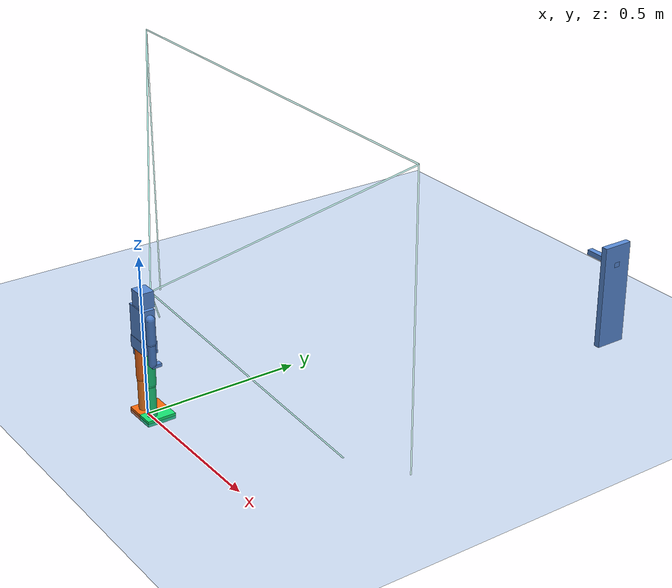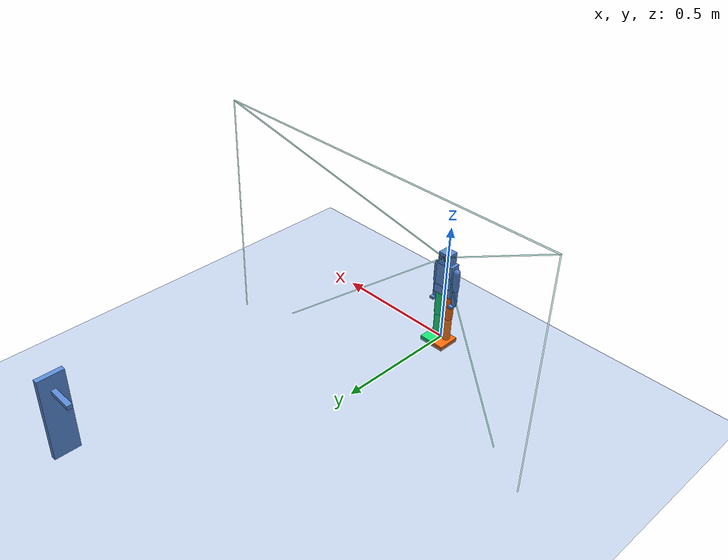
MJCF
<!-- Dronable v0 biped — AiNex-class ~0.41 m, walking core DOF + neck_pitch (pan-tilt)
     Units: meters, kilograms, radians. Z-up. -->
<mujoco model="dronable_v0">
  <compiler angle="radian" meshdir="." autolimits="true"/>
  <option timestep="0.002" gravity="0 0 -9.81" integrator="implicitfast"/>

  <visual>
    <global offwidth="960" offheight="720"/>
    <quality shadowsize="2048"/>
  </visual>

  <default>
    <joint damping="0.6" armature="0.01" frictionloss="0.02"/>
    <geom friction="1.2 0.1 0.01" solref="0.004 1" solimp="0.9 0.95 0.001" rgba="0.35 0.55 0.85 1"/>
    <motor ctrllimited="true" ctrlrange="-1 1"/>
    <default class="servo">
      <!-- Hiwonder-class bus servo envelope -->
      <joint damping="0.8" armature="0.015" frictionloss="0.03"/>
    </default>
    <default class="leg_geom">
      <geom type="capsule" density="800" rgba="0.30 0.50 0.80 1"/>
    </default>
    <default class="foot_geom">
      <geom type="box" density="600" rgba="0.25 0.25 0.30 1" friction="1.5 0.15 0.02"/>
    </default>
  </default>

  <asset>
    <texture type="skybox" builtin="gradient" rgb1="0.4 0.55 0.7" rgb2="0.05 0.08 0.12" width="512" height="512"/>
    <texture name="grid" type="2d" builtin="checker" rgb1="0.25 0.25 0.28" rgb2="0.35 0.35 0.38" width="512" height="512"/>
    <material name="grid" texture="grid" texrepeat="8 8" reflectance="0.02"/>
    <material name="body" rgba="0.32 0.55 0.88 1"/>
    <material name="accent" rgba="0.90 0.55 0.15 1"/>
    <material name="door" rgba="0.55 0.40 0.25 1"/>
  </asset>

  <worldbody>
    <light pos="1 1 2.5" dir="-0.3 -0.3 -1" diffuse="0.9 0.9 0.85" specular="0.3 0.3 0.3"/>
    <light pos="-1 0.5 2" dir="0.4 -0.2 -1" diffuse="0.4 0.45 0.5"/>
    <geom name="floor" type="plane" size="3 3 0.05" material="grid" friction="1.4 0.1 0.01"/>

    <!-- Prop door + lever ~275 mm (optional reach target) -->
    <body name="door_prop" pos="0.45 1.40 0">
      <geom name="door_panel" type="box" size="0.01 0.05 0.17" pos="0 0 0.17" material="door" contype="0" conaffinity="0"/>
      <geom name="door_lever" type="box" size="0.06 0.01 0.008" pos="-0.05 0 0.275" material="accent" contype="0" conaffinity="0"/>
    </body>

    <!-- Floating base at pelvis COM height ~0.24 m when standing -->
    <body name="pelvis" pos="0 0 0.230">
      <freejoint name="root"/>
      <inertial pos="0 0 0" mass="0.35" diaginertia="0.0012 0.0010 0.0010"/>
      <geom name="pelvis_geom" type="box" size="0.040 0.021 0.019" material="body"/>
      <site name="imu" pos="0 0 0.02" size="0.01"/>

      <!-- TORSO -->
      <body name="torso" pos="0 0 0.019">
        <joint name="waist_yaw" class="servo" type="hinge" axis="0 0 1" range="-0.7 0.7"/>
        <inertial pos="0 0 0.05" mass="0.55" diaginertia="0.0025 0.0020 0.0015"/>
        <geom name="torso_geom" type="box" size="0.037 0.020 0.050" pos="0 0 0.050" material="body"/>

        <!-- HEAD: yaw (pan) + neck_pitch (tilt). Kit cam HFOV=120° / VFOV≈104.82° (640×480).
             Stand cam_z≈0.385 m. Default approach pitch −16° (no fab shim). -->
        <body name="head" pos="0 0.005 0.100">
          <joint name="head_yaw" class="servo" type="hinge" axis="0 0 1" range="-1.0 1.0"/>
          <inertial pos="0 0 0.025" mass="0.04" diaginertia="0.00005 0.00005 0.00004"/>
          <body name="head_face" pos="0 0 0">
            <!-- neck_pitch about +X: negative = look down (toward lever). Range ~−50°..+30°. -->
            <joint name="neck_pitch" class="servo" type="hinge" axis="1 0 0" range="-0.87 0.52"/>
            <inertial pos="0 0 0.025" mass="0.08" diaginertia="0.00012 0.00012 0.00010"/>
            <geom name="head_geom" type="box" size="0.025 0.022 0.025" pos="0 0 0.025" material="body"/>
            <geom name="eye_L" type="cylinder" size="0.006 0.004" pos="-0.012 0.022 0.030" zaxis="0 1 0" material="accent" contype="0" conaffinity="0"/>
            <geom name="eye_R" type="cylinder" size="0.006 0.004" pos="0.012 0.022 0.030" zaxis="0 1 0" material="accent" contype="0" conaffinity="0"/>
            <!-- Kit cam site + camera: forward +Y, mount ≈385 mm stand -->
            <site name="kit_cam_site" pos="0.0 0.024 0.036" size="0.004" rgba="0.95 0.2 0.15 1"/>
            <!-- xyaxes: cam-X=+X, cam-Y=+Z ⇒ look +Y. fovy = VFOV for HFOV 120° @ 4:3 -->
            <camera name="kit_cam" pos="0.0 0.024 0.036" xyaxes="1 0 0 0 0 1" fovy="104.82"/>
            <!-- Visual FOV frustum (level optical axis in face frame), d=0.4 m, collision off -->
            <geom name="fov_e_tl" type="capsule" fromto="0.0 0.024 0.036  -0.6928 0.4240 0.5556" size="0.002" rgba="0.2 0.95 0.85 0.35" contype="0" conaffinity="0" group="1"/>
            <geom name="fov_e_tr" type="capsule" fromto="0.0 0.024 0.036  0.6928 0.4240 0.5556" size="0.002" rgba="0.2 0.95 0.85 0.35" contype="0" conaffinity="0" group="1"/>
            <geom name="fov_e_bl" type="capsule" fromto="0.0 0.024 0.036  -0.6928 0.4240 -0.4836" size="0.002" rgba="0.2 0.95 0.85 0.35" contype="0" conaffinity="0" group="1"/>
            <geom name="fov_e_br" type="capsule" fromto="0.0 0.024 0.036  0.6928 0.4240 -0.4836" size="0.002" rgba="0.2 0.95 0.85 0.35" contype="0" conaffinity="0" group="1"/>
            <geom name="fov_far_t" type="capsule" fromto="-0.6928 0.4240 0.5556  0.6928 0.4240 0.5556" size="0.002" rgba="0.2 0.95 0.85 0.28" contype="0" conaffinity="0" group="1"/>
            <geom name="fov_far_b" type="capsule" fromto="-0.6928 0.4240 -0.4836  0.6928 0.4240 -0.4836" size="0.002" rgba="0.2 0.95 0.85 0.28" contype="0" conaffinity="0" group="1"/>
            <geom name="fov_far_l" type="capsule" fromto="-0.6928 0.4240 0.5556  -0.6928 0.4240 -0.4836" size="0.002" rgba="0.2 0.95 0.85 0.28" contype="0" conaffinity="0" group="1"/>
            <geom name="fov_far_r" type="capsule" fromto="0.6928 0.4240 0.5556  0.6928 0.4240 -0.4836" size="0.002" rgba="0.2 0.95 0.85 0.28" contype="0" conaffinity="0" group="1"/>
          </body>
        </body>

        <!-- LEFT ARM -->
        <body name="l_shoulder" pos="-0.045 0 0.075">
          <joint name="l_shoulder_pitch" class="servo" type="hinge" axis="1 0 0" range="-2.0 1.5"/>
          <joint name="l_shoulder_roll" class="servo" type="hinge" axis="0 1 0" range="-0.3 1.8"/>
          <inertial pos="0 0 -0.036" mass="0.08" diaginertia="0.00008 0.00008 0.00002"/>
          <geom name="l_uarm" class="leg_geom" fromto="0 0 0 0 0 -0.072" size="0.014"/>
          <body name="l_elbow" pos="0 0 -0.072">
            <joint name="l_elbow" class="servo" type="hinge" axis="1 0 0" range="-0.1 2.2"/>
            <inertial pos="0 0 -0.034" mass="0.06" diaginertia="0.00005 0.00005 0.00001"/>
            <geom name="l_farm" class="leg_geom" fromto="0 0 0 0 0 -0.068" size="0.012"/>
            <geom name="l_hand" type="box" size="0.009 0.015 0.005" pos="0 0.01 -0.075" density="500"/>
          </body>
        </body>

        <!-- RIGHT ARM -->
        <body name="r_shoulder" pos="0.045 0 0.075">
          <joint name="r_shoulder_pitch" class="servo" type="hinge" axis="1 0 0" range="-2.0 1.5"/>
          <joint name="r_shoulder_roll" class="servo" type="hinge" axis="0 1 0" range="-1.8 0.3"/>
          <inertial pos="0 0 -0.036" mass="0.08" diaginertia="0.00008 0.00008 0.00002"/>
          <geom name="r_uarm" class="leg_geom" fromto="0 0 0 0 0 -0.072" size="0.014"/>
          <body name="r_elbow" pos="0 0 -0.072">
            <joint name="r_elbow" class="servo" type="hinge" axis="1 0 0" range="-0.1 2.2"/>
            <inertial pos="0 0 -0.034" mass="0.06" diaginertia="0.00005 0.00005 0.00001"/>
            <geom name="r_farm" class="leg_geom" fromto="0 0 0 0 0 -0.068" size="0.012"/>
            <geom name="r_hand" type="box" size="0.009 0.015 0.005" pos="0 0.01 -0.075" density="500"/>
          </body>
        </body>
      </body>

      <!-- LEFT LEG: hip yaw, roll, pitch → knee → ankle pitch, roll -->
      <body name="l_hip" pos="-0.025 0 -0.019">
        <joint name="l_hip_yaw" class="servo" type="hinge" axis="0 0 1" range="-0.6 0.6"/>
        <joint name="l_hip_roll" class="servo" type="hinge" axis="0 1 0" range="-0.5 0.7"/>
        <joint name="l_hip_pitch" class="servo" type="hinge" axis="1 0 0" range="-1.4 1.2"/>
        <inertial pos="0 0 -0.050" mass="0.14" diaginertia="0.00020 0.00020 0.00005"/>
        <geom name="l_thigh" class="leg_geom" fromto="0 0 0 0 0 -0.100" size="0.017" rgba="0.92 0.40 0.08 1"/>
        <body name="l_knee" pos="0 0 -0.100">
          <joint name="l_knee" class="servo" type="hinge" axis="1 0 0" range="-0.05 2.2"/>
          <inertial pos="0 0 -0.052" mass="0.12" diaginertia="0.00018 0.00018 0.00004"/>
          <geom name="l_shin" class="leg_geom" fromto="0 0 0 0 0 -0.105" size="0.015" rgba="0.95 0.48 0.12 1"/>
          <body name="l_ankle" pos="0 0 -0.105">
            <joint name="l_ankle_pitch" class="servo" type="hinge" axis="1 0 0" range="-0.9 0.9"/>
            <joint name="l_ankle_roll" class="servo" type="hinge" axis="0 1 0" range="-0.5 0.5"/>
            <inertial pos="0 0.012 -0.008" mass="0.06" diaginertia="0.00004 0.00008 0.00008"/>
            <geom name="l_foot" class="foot_geom" size="0.028 0.045 0.009" pos="0 0.016 -0.009" rgba="0.98 0.42 0.05 1"/>
          </body>
        </body>
      </body>

      <!-- RIGHT LEG -->
      <body name="r_hip" pos="0.025 0 -0.019">
        <joint name="r_hip_yaw" class="servo" type="hinge" axis="0 0 1" range="-0.6 0.6"/>
        <joint name="r_hip_roll" class="servo" type="hinge" axis="0 1 0" range="-0.7 0.5"/>
        <joint name="r_hip_pitch" class="servo" type="hinge" axis="1 0 0" range="-1.4 1.2"/>
        <inertial pos="0 0 -0.050" mass="0.14" diaginertia="0.00020 0.00020 0.00005"/>
        <geom name="r_thigh" class="leg_geom" fromto="0 0 0 0 0 -0.100" size="0.017" rgba="0.10 0.78 0.48 1"/>
        <body name="r_knee" pos="0 0 -0.100">
          <joint name="r_knee" class="servo" type="hinge" axis="1 0 0" range="-0.05 2.2"/>
          <inertial pos="0 0 -0.052" mass="0.12" diaginertia="0.00018 0.00018 0.00004"/>
          <geom name="r_shin" class="leg_geom" fromto="0 0 0 0 0 -0.105" size="0.015" rgba="0.12 0.82 0.50 1"/>
          <body name="r_ankle" pos="0 0 -0.105">
            <joint name="r_ankle_pitch" class="servo" type="hinge" axis="1 0 0" range="-0.9 0.9"/>
            <joint name="r_ankle_roll" class="servo" type="hinge" axis="0 1 0" range="-0.5 0.5"/>
            <inertial pos="0 0.012 -0.008" mass="0.06" diaginertia="0.00004 0.00008 0.00008"/>
            <geom name="r_foot" class="foot_geom" size="0.028 0.045 0.009" pos="0 0.016 -0.009" rgba="0.08 0.90 0.45 1"/>
          </body>
        </body>
      </body>
    </body>
  </worldbody>

  <actuator>
    <position name="m_waist_yaw" joint="waist_yaw" kp="20" dampratio="0.4" ctrlrange="-0.7 0.7" forcelimited="true" forcerange="-1.1 1.1"/>
    <position name="m_head_yaw" joint="head_yaw" kp="20" dampratio="0.4" ctrlrange="-1 1" forcelimited="true" forcerange="-1.1 1.1"/>
    <position name="m_neck_pitch" joint="neck_pitch" kp="20" dampratio="0.4" ctrlrange="-0.87 0.52" forcelimited="true" forcerange="-1.1 1.1"/>

    <position name="m_l_shoulder_pitch" joint="l_shoulder_pitch" kp="20" dampratio="0.4" ctrlrange="-2 1.5" forcelimited="true" forcerange="-1.1 1.1"/>
    <position name="m_l_shoulder_roll" joint="l_shoulder_roll" kp="20" dampratio="0.4" ctrlrange="-0.3 1.8" forcelimited="true" forcerange="-1.1 1.1"/>
    <position name="m_l_elbow" joint="l_elbow" kp="20" dampratio="0.4" ctrlrange="-0.1 2.2" forcelimited="true" forcerange="-1.1 1.1"/>
    <position name="m_r_shoulder_pitch" joint="r_shoulder_pitch" kp="20" dampratio="0.4" ctrlrange="-2 1.5" forcelimited="true" forcerange="-1.1 1.1"/>
    <position name="m_r_shoulder_roll" joint="r_shoulder_roll" kp="20" dampratio="0.4" ctrlrange="-1.8 0.3" forcelimited="true" forcerange="-1.1 1.1"/>
    <position name="m_r_elbow" joint="r_elbow" kp="20" dampratio="0.4" ctrlrange="-0.1 2.2" forcelimited="true" forcerange="-1.1 1.1"/>

    <position name="m_l_hip_yaw" joint="l_hip_yaw" kp="40" dampratio="1.0" ctrlrange="-0.6 0.6" forcelimited="true" forcerange="-2.1 2.1"/>
    <position name="m_l_hip_roll" joint="l_hip_roll" kp="40" dampratio="1.0" ctrlrange="-0.5 0.7" forcelimited="true" forcerange="-2.1 2.1"/>
    <position name="m_l_hip_pitch" joint="l_hip_pitch" kp="40" dampratio="1.0" ctrlrange="-1.4 1.2" forcelimited="true" forcerange="-2.1 2.1"/>
    <position name="m_l_knee" joint="l_knee" kp="40" dampratio="1.0" ctrlrange="-0.05 2.2" forcelimited="true" forcerange="-2.1 2.1"/>
    <position name="m_l_ankle_pitch" joint="l_ankle_pitch" kp="25" dampratio="0.6" ctrlrange="-0.9 0.9" forcelimited="true" forcerange="-1.1 1.1"/>
    <position name="m_l_ankle_roll" joint="l_ankle_roll" kp="25" dampratio="0.6" ctrlrange="-0.5 0.5" forcelimited="true" forcerange="-1.1 1.1"/>

    <position name="m_r_hip_yaw" joint="r_hip_yaw" kp="40" dampratio="1.0" ctrlrange="-0.6 0.6" forcelimited="true" forcerange="-2.1 2.1"/>
    <position name="m_r_hip_roll" joint="r_hip_roll" kp="40" dampratio="1.0" ctrlrange="-0.7 0.5" forcelimited="true" forcerange="-2.1 2.1"/>
    <position name="m_r_hip_pitch" joint="r_hip_pitch" kp="40" dampratio="1.0" ctrlrange="-1.4 1.2" forcelimited="true" forcerange="-2.1 2.1"/>
    <position name="m_r_knee" joint="r_knee" kp="40" dampratio="1.0" ctrlrange="-0.05 2.2" forcelimited="true" forcerange="-2.1 2.1"/>
    <position name="m_r_ankle_pitch" joint="r_ankle_pitch" kp="25" dampratio="0.6" ctrlrange="-0.9 0.9" forcelimited="true" forcerange="-1.1 1.1"/>
    <position name="m_r_ankle_roll" joint="r_ankle_roll" kp="25" dampratio="0.6" ctrlrange="-0.5 0.5" forcelimited="true" forcerange="-1.1 1.1"/>
  </actuator>

  <sensor>
    <framequat name="pelvis_quat" objtype="site" objname="imu"/>
    <gyro name="pelvis_gyro" site="imu"/>
    <accelerometer name="pelvis_acc" site="imu"/>
  </sensor>

  <keyframe>
    <!-- Standing pose: slight knee bend, arms down -->
    <key name="stand" qpos="0 0 0.230 1 0 0 0
      0 0 0
      0.15 0.35 0.4
      0.15 -0.35 0.4
      0 0.08 -0.15 0.35 -0.20 0
      0 -0.08 -0.15 0.35 -0.20 0"
      ctrl="0 0 0
      0.15 0.35 0.4
      0.15 -0.35 0.4
      0 0.08 -0.15 0.35 -0.20 0
      0 -0.08 -0.15 0.35 -0.20 0"/>
  </keyframe>
</mujoco>
